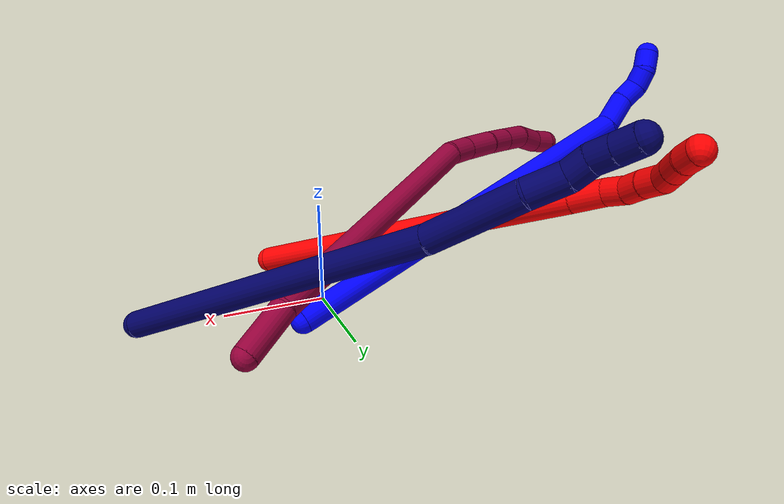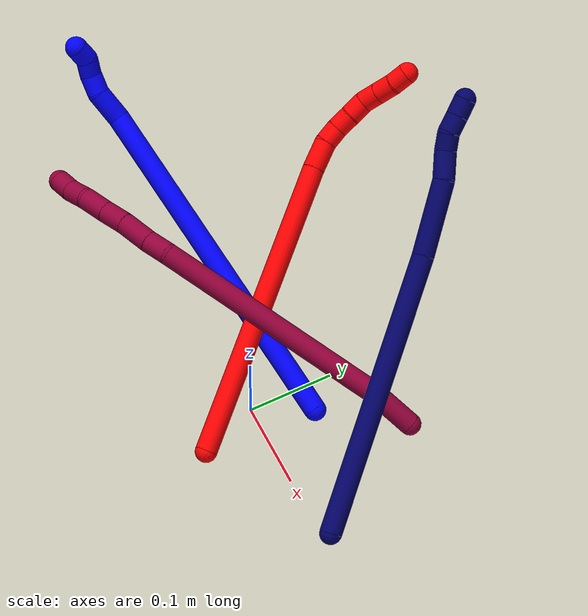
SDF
<sdf version="1.7">
 <world name="default">
  <model name="1">
   <static>0</static>
   <link name="1">
    <collision name="collision-cylinder-e_1_1_4">
     <pose>-0.049071 -0.015045 0.193484 0.077603 -0.247663 -0.009664</pose>
     <geometry><cylinder><radius>0.0125</radius><length>0.400352</length></cylinder></geometry>
     <surface>
      <friction><ode><mu>1.16</mu><mu2>1.16</mu2><slip1>0</slip1><slip2>0</slip2></ode></friction>
      <contact><ode><kp>1e+06</kp><kd>1</kd><max_vel>0</max_vel><min_depth>0.001</min_depth></ode></contact>
     </surface>
    </collision>
    <visual name="visual-cylinder-e_1_1_4">
     <pose>-0.049071 -0.015045 0.193484 0.077603 -0.247663 -0.009664</pose>
     <geometry><cylinder><radius>0.0125</radius><length>0.400352</length></cylinder></geometry>
     <material><ambient>0 0 1 1</ambient></material>
    </visual>
    <collision name="collision-cylinder-e_2_4_5">
     <pose>-0.10297 -0.024399 0.403611 -0.329486 -0.267899 0.044799</pose>
     <geometry><cylinder><radius>0.0125</radius><length>0.036479</length></cylinder></geometry>
     <surface>
      <friction><ode><mu>1.16</mu><mu2>1.16</mu2><slip1>0</slip1><slip2>0</slip2></ode></friction>
      <contact><ode><kp>1e+06</kp><kd>1</kd><max_vel>0</max_vel><min_depth>0.001</min_depth></ode></contact>
     </surface>
    </collision>
    <visual name="visual-cylinder-e_2_4_5">
     <pose>-0.10297 -0.024399 0.403611 -0.329486 -0.267899 0.044799</pose>
     <geometry><cylinder><radius>0.0125</radius><length>0.036479</length></cylinder></geometry>
     <material><ambient>0 0 1 1</ambient></material>
    </visual>
    <collision name="collision-cylinder-e_3_5_6">
     <pose>-0.113581 -0.017404 0.430177 -0.130683 -0.523993 0.03509</pose>
     <geometry><cylinder><radius>0.0125</radius><length>0.023117</length></cylinder></geometry>
     <surface>
      <friction><ode><mu>1.16</mu><mu2>1.16</mu2><slip1>0</slip1><slip2>0</slip2></ode></friction>
      <contact><ode><kp>1e+06</kp><kd>1</kd><max_vel>0</max_vel><min_depth>0.001</min_depth></ode></contact>
     </surface>
    </collision>
    <visual name="visual-cylinder-e_3_5_6">
     <pose>-0.113581 -0.017404 0.430177 -0.130683 -0.523993 0.03509</pose>
     <geometry><cylinder><radius>0.0125</radius><length>0.023117</length></cylinder></geometry>
     <material><ambient>0 0 1 1</ambient></material>
    </visual>
    <collision name="collision-cylinder-e_4_6_7">
     <pose>-0.126033 -0.011768 0.446179 -0.619015 -0.729051 0.242845</pose>
     <geometry><cylinder><radius>0.0125</radius><length>0.020021</length></cylinder></geometry>
     <surface>
      <friction><ode><mu>1.16</mu><mu2>1.16</mu2><slip1>0</slip1><slip2>0</slip2></ode></friction>
      <contact><ode><kp>1e+06</kp><kd>1</kd><max_vel>0</max_vel><min_depth>0.001</min_depth></ode></contact>
     </surface>
    </collision>
    <visual name="visual-cylinder-e_4_6_7">
     <pose>-0.126033 -0.011768 0.446179 -0.619015 -0.729051 0.242845</pose>
     <geometry><cylinder><radius>0.0125</radius><length>0.020021</length></cylinder></geometry>
     <material><ambient>0 0 1 1</ambient></material>
    </visual>
    <collision name="collision-cylinder-e_5_7_2">
     <pose>-0.135525 -0.001133 0.459513 -0.715461 -0.285782 0.107459</pose>
     <geometry><cylinder><radius>0.0125</radius><length>0.02003</length></cylinder></geometry>
     <surface>
      <friction><ode><mu>1.16</mu><mu2>1.16</mu2><slip1>0</slip1><slip2>0</slip2></ode></friction>
      <contact><ode><kp>1e+06</kp><kd>1</kd><max_vel>0</max_vel><min_depth>0.001</min_depth></ode></contact>
     </surface>
    </collision>
    <visual name="visual-cylinder-e_5_7_2">
     <pose>-0.135525 -0.001133 0.459513 -0.715461 -0.285782 0.107459</pose>
     <geometry><cylinder><radius>0.0125</radius><length>0.02003</length></cylinder></geometry>
     <material><ambient>0 0 1 1</ambient></material>
    </visual>
    <collision name="collision-sphere-2">
     <pose>-0.138348 0.00517 0.466766 0 -0 0</pose>
     <geometry><sphere><radius>0.0125</radius></sphere></geometry>
     <surface>
      <friction><ode><mu>1.16</mu><mu2>1.16</mu2><slip1>0</slip1><slip2>0</slip2></ode></friction>
      <contact><ode><kp>1e+06</kp><kd>1</kd><max_vel>0</max_vel><min_depth>0.001</min_depth></ode></contact>
     </surface>
    </collision>
    <visual name="visual-sphere-2">
     <pose>-0.138348 0.00517 0.466766 0 -0 0</pose>
     <geometry><sphere><radius>0.0125</radius></sphere></geometry>
     <material><ambient>0 0 1 1</ambient></material>
    </visual>
    <collision name="collision-sphere-7">
     <pose>-0.132702 -0.007436 0.45226 0 -0 0</pose>
     <geometry><sphere><radius>0.0125</radius></sphere></geometry>
     <surface>
      <friction><ode><mu>1.16</mu><mu2>1.16</mu2><slip1>0</slip1><slip2>0</slip2></ode></friction>
      <contact><ode><kp>1e+06</kp><kd>1</kd><max_vel>0</max_vel><min_depth>0.001</min_depth></ode></contact>
     </surface>
    </collision>
    <visual name="visual-sphere-7">
     <pose>-0.132702 -0.007436 0.45226 0 -0 0</pose>
     <geometry><sphere><radius>0.0125</radius></sphere></geometry>
     <material><ambient>0 0 1 1</ambient></material>
    </visual>
    <collision name="collision-sphere-6">
     <pose>-0.119364 -0.0161 0.440099 0 -0 0</pose>
     <geometry><sphere><radius>0.0125</radius></sphere></geometry>
     <surface>
      <friction><ode><mu>1.16</mu><mu2>1.16</mu2><slip1>0</slip1><slip2>0</slip2></ode></friction>
      <contact><ode><kp>1e+06</kp><kd>1</kd><max_vel>0</max_vel><min_depth>0.001</min_depth></ode></contact>
     </surface>
    </collision>
    <visual name="visual-sphere-6">
     <pose>-0.119364 -0.0161 0.440099 0 -0 0</pose>
     <geometry><sphere><radius>0.0125</radius></sphere></geometry>
     <material><ambient>0 0 1 1</ambient></material>
    </visual>
    <collision name="collision-sphere-5">
     <pose>-0.107798 -0.018708 0.420254 0 -0 0</pose>
     <geometry><sphere><radius>0.0125</radius></sphere></geometry>
     <surface>
      <friction><ode><mu>1.16</mu><mu2>1.16</mu2><slip1>0</slip1><slip2>0</slip2></ode></friction>
      <contact><ode><kp>1e+06</kp><kd>1</kd><max_vel>0</max_vel><min_depth>0.001</min_depth></ode></contact>
     </surface>
    </collision>
    <visual name="visual-sphere-5">
     <pose>-0.107798 -0.018708 0.420254 0 -0 0</pose>
     <geometry><sphere><radius>0.0125</radius></sphere></geometry>
     <material><ambient>0 0 1 1</ambient></material>
    </visual>
    <collision name="collision-sphere-1">
     <geometry><sphere><radius>0.0125</radius></sphere></geometry>
     <surface>
      <friction><ode><mu>1.16</mu><mu2>1.16</mu2><slip1>0</slip1><slip2>0</slip2></ode></friction>
      <contact><ode><kp>1e+06</kp><kd>1</kd><max_vel>0</max_vel><min_depth>0.001</min_depth></ode></contact>
     </surface>
    </collision>
    <visual name="visual-sphere-1">
     <geometry><sphere><radius>0.0125</radius></sphere></geometry>
     <material><ambient>0 0 1 1</ambient></material>
    </visual>
    <collision name="collision-sphere-4">
     <pose>-0.098142 -0.030091 0.386969 0 -0 0</pose>
     <geometry><sphere><radius>0.0125</radius></sphere></geometry>
     <surface>
      <friction><ode><mu>1.16</mu><mu2>1.16</mu2><slip1>0</slip1><slip2>0</slip2></ode></friction>
      <contact><ode><kp>1e+06</kp><kd>1</kd><max_vel>0</max_vel><min_depth>0.001</min_depth></ode></contact>
     </surface>
    </collision>
    <visual name="visual-sphere-4">
     <pose>-0.098142 -0.030091 0.386969 0 -0 0</pose>
     <geometry><sphere><radius>0.0125</radius></sphere></geometry>
     <material><ambient>0 0 1 1</ambient></material>
    </visual>
    <inertial>
     <pose>-0.062531 -0.015148 0.240534 0 -0 0</pose>
     <mass>0.5</mass>
     <inertia>
      <ixx>0.005148</ixx>
      <ixy>0</ixy>
      <ixz>0</ixz>
      <iyy>0.005308</iyy>
      <iyz>0</iyz>
      <izz>0.001755</izz>
     </inertia>
    </inertial>
   </link>
   <pose>0.037433 0.061786 0.011498 1.24947 0.696426 -1.35951</pose>
  </model>
  <model name="2">
   <static>0</static>
   <link name="2">
    <collision name="collision-cylinder-e_1_1_4">
     <pose>-0.009867 0.170317 0.007344 -1.5277 -0.057812 0.055374</pose>
     <geometry><cylinder><radius>0.0125</radius><length>0.341521</length></cylinder></geometry>
     <surface>
      <friction><ode><mu>1.16</mu><mu2>1.16</mu2><slip1>0</slip1><slip2>0</slip2></ode></friction>
      <contact><ode><kp>1e+06</kp><kd>1</kd><max_vel>0</max_vel><min_depth>0.001</min_depth></ode></contact>
     </surface>
    </collision>
    <visual name="visual-cylinder-e_1_1_4">
     <pose>-0.009867 0.170317 0.007344 -1.5277 -0.057812 0.055374</pose>
     <geometry><cylinder><radius>0.0125</radius><length>0.341521</length></cylinder></geometry>
     <material><ambient>1 0 0 1</ambient></material>
    </visual>
    <collision name="collision-cylinder-e_2_4_5">
     <pose>-0.019527 0.357098 0.014775 -1.56551 0.012541 -0.012475</pose>
     <geometry><cylinder><radius>0.0125</radius><length>0.032932</length></cylinder></geometry>
     <surface>
      <friction><ode><mu>1.16</mu><mu2>1.16</mu2><slip1>0</slip1><slip2>0</slip2></ode></friction>
      <contact><ode><kp>1e+06</kp><kd>1</kd><max_vel>0</max_vel><min_depth>0.001</min_depth></ode></contact>
     </surface>
    </collision>
    <visual name="visual-cylinder-e_2_4_5">
     <pose>-0.019527 0.357098 0.014775 -1.56551 0.012541 -0.012475</pose>
     <geometry><cylinder><radius>0.0125</radius><length>0.032932</length></cylinder></geometry>
     <material><ambient>1 0 0 1</ambient></material>
    </visual>
    <collision name="collision-cylinder-e_3_5_6">
     <pose>-0.017939 0.383748 0.01262 -1.78741 0.131684 -0.163685</pose>
     <geometry><cylinder><radius>0.0125</radius><length>0.021041</length></cylinder></geometry>
     <surface>
      <friction><ode><mu>1.16</mu><mu2>1.16</mu2><slip1>0</slip1><slip2>0</slip2></ode></friction>
      <contact><ode><kp>1e+06</kp><kd>1</kd><max_vel>0</max_vel><min_depth>0.001</min_depth></ode></contact>
     </surface>
    </collision>
    <visual name="visual-cylinder-e_3_5_6">
     <pose>-0.017939 0.383748 0.01262 -1.78741 0.131684 -0.163685</pose>
     <geometry><cylinder><radius>0.0125</radius><length>0.021041</length></cylinder></geometry>
     <material><ambient>1 0 0 1</ambient></material>
    </visual>
    <collision name="collision-cylinder-e_4_6_7">
     <pose>-0.012112 0.403196 0.008229 -1.79887 0.437374 -0.545526</pose>
     <geometry><cylinder><radius>0.0125</radius><length>0.020992</length></cylinder></geometry>
     <surface>
      <friction><ode><mu>1.16</mu><mu2>1.16</mu2><slip1>0</slip1><slip2>0</slip2></ode></friction>
      <contact><ode><kp>1e+06</kp><kd>1</kd><max_vel>0</max_vel><min_depth>0.001</min_depth></ode></contact>
     </surface>
    </collision>
    <visual name="visual-cylinder-e_4_6_7">
     <pose>-0.012112 0.403196 0.008229 -1.79887 0.437374 -0.545526</pose>
     <geometry><cylinder><radius>0.0125</radius><length>0.020992</length></cylinder></geometry>
     <material><ambient>1 0 0 1</ambient></material>
    </visual>
    <collision name="collision-cylinder-e_5_7_8">
     <pose>-0.004047 0.422247 0.003636 -1.8153 0.344355 -0.438092</pose>
     <geometry><cylinder><radius>0.0125</radius><length>0.021439</length></cylinder></geometry>
     <surface>
      <friction><ode><mu>1.16</mu><mu2>1.16</mu2><slip1>0</slip1><slip2>0</slip2></ode></friction>
      <contact><ode><kp>1e+06</kp><kd>1</kd><max_vel>0</max_vel><min_depth>0.001</min_depth></ode></contact>
     </surface>
    </collision>
    <visual name="visual-cylinder-e_5_7_8">
     <pose>-0.004047 0.422247 0.003636 -1.8153 0.344355 -0.438092</pose>
     <geometry><cylinder><radius>0.0125</radius><length>0.021439</length></cylinder></geometry>
     <material><ambient>1 0 0 1</ambient></material>
    </visual>
    <collision name="collision-cylinder-e_6_8_9">
     <pose>0.006892 0.438958 -0.001477 -1.93913 0.778731 -1.07815</pose>
     <geometry><cylinder><radius>0.0125</radius><length>0.020843</length></cylinder></geometry>
     <surface>
      <friction><ode><mu>1.16</mu><mu2>1.16</mu2><slip1>0</slip1><slip2>0</slip2></ode></friction>
      <contact><ode><kp>1e+06</kp><kd>1</kd><max_vel>0</max_vel><min_depth>0.001</min_depth></ode></contact>
     </surface>
    </collision>
    <visual name="visual-cylinder-e_6_8_9">
     <pose>0.006892 0.438958 -0.001477 -1.93913 0.778731 -1.07815</pose>
     <geometry><cylinder><radius>0.0125</radius><length>0.020843</length></cylinder></geometry>
     <material><ambient>1 0 0 1</ambient></material>
    </visual>
    <collision name="collision-cylinder-e_7_9_10">
     <pose>0.02167 0.452833 -0.006792 -1.9341 0.786649 -1.08331</pose>
     <geometry><cylinder><radius>0.0125</radius><length>0.02107</length></cylinder></geometry>
     <surface>
      <friction><ode><mu>1.16</mu><mu2>1.16</mu2><slip1>0</slip1><slip2>0</slip2></ode></friction>
      <contact><ode><kp>1e+06</kp><kd>1</kd><max_vel>0</max_vel><min_depth>0.001</min_depth></ode></contact>
     </surface>
    </collision>
    <visual name="visual-cylinder-e_7_9_10">
     <pose>0.02167 0.452833 -0.006792 -1.9341 0.786649 -1.08331</pose>
     <geometry><cylinder><radius>0.0125</radius><length>0.02107</length></cylinder></geometry>
     <material><ambient>1 0 0 1</ambient></material>
    </visual>
    <collision name="collision-cylinder-e_8_10_2">
     <pose>0.035132 0.467581 -0.011638 -1.84614 0.637944 -0.823106</pose>
     <geometry><cylinder><radius>0.0125</radius><length>0.020163</length></cylinder></geometry>
     <surface>
      <friction><ode><mu>1.16</mu><mu2>1.16</mu2><slip1>0</slip1><slip2>0</slip2></ode></friction>
      <contact><ode><kp>1e+06</kp><kd>1</kd><max_vel>0</max_vel><min_depth>0.001</min_depth></ode></contact>
     </surface>
    </collision>
    <visual name="visual-cylinder-e_8_10_2">
     <pose>0.035132 0.467581 -0.011638 -1.84614 0.637944 -0.823106</pose>
     <geometry><cylinder><radius>0.0125</radius><length>0.020163</length></cylinder></geometry>
     <material><ambient>1 0 0 1</ambient></material>
    </visual>
    <collision name="collision-sphere-2">
     <pose>0.041136 0.475374 -0.01384 0 -0 0</pose>
     <geometry><sphere><radius>0.0125</radius></sphere></geometry>
     <surface>
      <friction><ode><mu>1.16</mu><mu2>1.16</mu2><slip1>0</slip1><slip2>0</slip2></ode></friction>
      <contact><ode><kp>1e+06</kp><kd>1</kd><max_vel>0</max_vel><min_depth>0.001</min_depth></ode></contact>
     </surface>
    </collision>
    <visual name="visual-sphere-2">
     <pose>0.041136 0.475374 -0.01384 0 -0 0</pose>
     <geometry><sphere><radius>0.0125</radius></sphere></geometry>
     <material><ambient>1 0 0 1</ambient></material>
    </visual>
    <collision name="collision-sphere-10">
     <pose>0.029129 0.459787 -0.009436 0 -0 0</pose>
     <geometry><sphere><radius>0.0125</radius></sphere></geometry>
     <surface>
      <friction><ode><mu>1.16</mu><mu2>1.16</mu2><slip1>0</slip1><slip2>0</slip2></ode></friction>
      <contact><ode><kp>1e+06</kp><kd>1</kd><max_vel>0</max_vel><min_depth>0.001</min_depth></ode></contact>
     </surface>
    </collision>
    <visual name="visual-sphere-10">
     <pose>0.029129 0.459787 -0.009436 0 -0 0</pose>
     <geometry><sphere><radius>0.0125</radius></sphere></geometry>
     <material><ambient>1 0 0 1</ambient></material>
    </visual>
    <collision name="collision-sphere-9">
     <pose>0.014211 0.445879 -0.004148 0 -0 0</pose>
     <geometry><sphere><radius>0.0125</radius></sphere></geometry>
     <surface>
      <friction><ode><mu>1.16</mu><mu2>1.16</mu2><slip1>0</slip1><slip2>0</slip2></ode></friction>
      <contact><ode><kp>1e+06</kp><kd>1</kd><max_vel>0</max_vel><min_depth>0.001</min_depth></ode></contact>
     </surface>
    </collision>
    <visual name="visual-sphere-9">
     <pose>0.014211 0.445879 -0.004148 0 -0 0</pose>
     <geometry><sphere><radius>0.0125</radius></sphere></geometry>
     <material><ambient>1 0 0 1</ambient></material>
    </visual>
    <collision name="collision-sphere-4">
     <pose>-0.019733 0.340634 0.014688 0 -0 0</pose>
     <geometry><sphere><radius>0.0125</radius></sphere></geometry>
     <surface>
      <friction><ode><mu>1.16</mu><mu2>1.16</mu2><slip1>0</slip1><slip2>0</slip2></ode></friction>
      <contact><ode><kp>1e+06</kp><kd>1</kd><max_vel>0</max_vel><min_depth>0.001</min_depth></ode></contact>
     </surface>
    </collision>
    <visual name="visual-sphere-4">
     <pose>-0.019733 0.340634 0.014688 0 -0 0</pose>
     <geometry><sphere><radius>0.0125</radius></sphere></geometry>
     <material><ambient>1 0 0 1</ambient></material>
    </visual>
    <collision name="collision-sphere-1">
     <geometry><sphere><radius>0.0125</radius></sphere></geometry>
     <surface>
      <friction><ode><mu>1.16</mu><mu2>1.16</mu2><slip1>0</slip1><slip2>0</slip2></ode></friction>
      <contact><ode><kp>1e+06</kp><kd>1</kd><max_vel>0</max_vel><min_depth>0.001</min_depth></ode></contact>
     </surface>
    </collision>
    <visual name="visual-sphere-1">
     <geometry><sphere><radius>0.0125</radius></sphere></geometry>
     <material><ambient>1 0 0 1</ambient></material>
    </visual>
    <collision name="collision-sphere-8">
     <pose>-0.000428 0.432038 0.001194 0 -0 0</pose>
     <geometry><sphere><radius>0.0125</radius></sphere></geometry>
     <surface>
      <friction><ode><mu>1.16</mu><mu2>1.16</mu2><slip1>0</slip1><slip2>0</slip2></ode></friction>
      <contact><ode><kp>1e+06</kp><kd>1</kd><max_vel>0</max_vel><min_depth>0.001</min_depth></ode></contact>
     </surface>
    </collision>
    <visual name="visual-sphere-8">
     <pose>-0.000428 0.432038 0.001194 0 -0 0</pose>
     <geometry><sphere><radius>0.0125</radius></sphere></geometry>
     <material><ambient>1 0 0 1</ambient></material>
    </visual>
    <collision name="collision-sphere-5">
     <pose>-0.01932 0.373562 0.014862 0 -0 0</pose>
     <geometry><sphere><radius>0.0125</radius></sphere></geometry>
     <surface>
      <friction><ode><mu>1.16</mu><mu2>1.16</mu2><slip1>0</slip1><slip2>0</slip2></ode></friction>
      <contact><ode><kp>1e+06</kp><kd>1</kd><max_vel>0</max_vel><min_depth>0.001</min_depth></ode></contact>
     </surface>
    </collision>
    <visual name="visual-sphere-5">
     <pose>-0.01932 0.373562 0.014862 0 -0 0</pose>
     <geometry><sphere><radius>0.0125</radius></sphere></geometry>
     <material><ambient>1 0 0 1</ambient></material>
    </visual>
    <collision name="collision-sphere-6">
     <pose>-0.016557 0.393934 0.010379 0 -0 0</pose>
     <geometry><sphere><radius>0.0125</radius></sphere></geometry>
     <surface>
      <friction><ode><mu>1.16</mu><mu2>1.16</mu2><slip1>0</slip1><slip2>0</slip2></ode></friction>
      <contact><ode><kp>1e+06</kp><kd>1</kd><max_vel>0</max_vel><min_depth>0.001</min_depth></ode></contact>
     </surface>
    </collision>
    <visual name="visual-sphere-6">
     <pose>-0.016557 0.393934 0.010379 0 -0 0</pose>
     <geometry><sphere><radius>0.0125</radius></sphere></geometry>
     <material><ambient>1 0 0 1</ambient></material>
    </visual>
    <collision name="collision-sphere-7">
     <pose>-0.007666 0.412457 0.006079 0 -0 0</pose>
     <geometry><sphere><radius>0.0125</radius></sphere></geometry>
     <surface>
      <friction><ode><mu>1.16</mu><mu2>1.16</mu2><slip1>0</slip1><slip2>0</slip2></ode></friction>
      <contact><ode><kp>1e+06</kp><kd>1</kd><max_vel>0</max_vel><min_depth>0.001</min_depth></ode></contact>
     </surface>
    </collision>
    <visual name="visual-sphere-7">
     <pose>-0.007666 0.412457 0.006079 0 -0 0</pose>
     <geometry><sphere><radius>0.0125</radius></sphere></geometry>
     <material><ambient>1 0 0 1</ambient></material>
    </visual>
    <inertial>
     <pose>-0.006845 0.247271 0.006205 0 -0 0</pose>
     <mass>0.5</mass>
     <inertia>
      <ixx>0.003515</ixx>
      <ixy>0</ixy>
      <ixz>0</ixz>
      <iyy>0.000372</iyy>
      <iyz>0</iyz>
      <izz>-0.003149</izz>
     </inertia>
    </inertial>
   </link>
   <pose>0.034921 -0.071985 0.020597 0.552321 -0.82901 0.229746</pose>
  </model>
  <model name="7">
   <static>0</static>
   <link name="7">
    <collision name="collision-cylinder-e_1_1_4">
     <pose>-0.015185 0.01989 0.157905 -0.125304 -0.095125 0.005972</pose>
     <geometry><cylinder><radius>0.0125</radius><length>0.31975</length></cylinder></geometry>
     <surface>
      <friction><ode><mu>1.16</mu><mu2>1.16</mu2><slip1>0</slip1><slip2>0</slip2></ode></friction>
      <contact><ode><kp>1e+06</kp><kd>1</kd><max_vel>0</max_vel><min_depth>0.001</min_depth></ode></contact>
     </surface>
    </collision>
    <visual name="visual-cylinder-e_1_1_4">
     <pose>-0.015185 0.01989 0.157905 -0.125304 -0.095125 0.005972</pose>
     <geometry><cylinder><radius>0.0125</radius><length>0.31975</length></cylinder></geometry>
     <material><ambient>0.003922 0 0.403922 1</ambient></material>
    </visual>
    <collision name="collision-cylinder-e_2_4_5">
     <pose>-0.029006 0.045678 0.358598 -0.136965 0.031573 -0.002166</pose>
     <geometry><cylinder><radius>0.0125</radius><length>0.08643</length></cylinder></geometry>
     <surface>
      <friction><ode><mu>1.16</mu><mu2>1.16</mu2><slip1>0</slip1><slip2>0</slip2></ode></friction>
      <contact><ode><kp>1e+06</kp><kd>1</kd><max_vel>0</max_vel><min_depth>0.001</min_depth></ode></contact>
     </surface>
    </collision>
    <visual name="visual-cylinder-e_2_4_5">
     <pose>-0.029006 0.045678 0.358598 -0.136965 0.031573 -0.002166</pose>
     <geometry><cylinder><radius>0.0125</radius><length>0.08643</length></cylinder></geometry>
     <material><ambient>0.003922 0 0.403922 1</ambient></material>
    </visual>
    <collision name="collision-cylinder-e_3_5_6">
     <pose>-0.026894 0.05004 0.417695 0.093894 0.045611 0.002143</pose>
     <geometry><cylinder><radius>0.0125</radius><length>0.032795</length></cylinder></geometry>
     <surface>
      <friction><ode><mu>1.16</mu><mu2>1.16</mu2><slip1>0</slip1><slip2>0</slip2></ode></friction>
      <contact><ode><kp>1e+06</kp><kd>1</kd><max_vel>0</max_vel><min_depth>0.001</min_depth></ode></contact>
     </surface>
    </collision>
    <visual name="visual-cylinder-e_3_5_6">
     <pose>-0.026894 0.05004 0.417695 0.093894 0.045611 0.002143</pose>
     <geometry><cylinder><radius>0.0125</radius><length>0.032795</length></cylinder></geometry>
     <material><ambient>0.003922 0 0.403922 1</ambient></material>
    </visual>
    <collision name="collision-cylinder-e_4_6_7">
     <pose>-0.023764 0.049975 0.44376 -0.149581 0.236975 -0.01784</pose>
     <geometry><cylinder><radius>0.0125</radius><length>0.020302</length></cylinder></geometry>
     <surface>
      <friction><ode><mu>1.16</mu><mu2>1.16</mu2><slip1>0</slip1><slip2>0</slip2></ode></friction>
      <contact><ode><kp>1e+06</kp><kd>1</kd><max_vel>0</max_vel><min_depth>0.001</min_depth></ode></contact>
     </surface>
    </collision>
    <visual name="visual-cylinder-e_4_6_7">
     <pose>-0.023764 0.049975 0.44376 -0.149581 0.236975 -0.01784</pose>
     <geometry><cylinder><radius>0.0125</radius><length>0.020302</length></cylinder></geometry>
     <material><ambient>0.003922 0 0.403922 1</ambient></material>
    </visual>
    <collision name="collision-cylinder-e_5_7_8">
     <pose>-0.022079 0.054516 0.463113 -0.309712 -0.069229 0.010811</pose>
     <geometry><cylinder><radius>0.0125</radius><length>0.020198</length></cylinder></geometry>
     <surface>
      <friction><ode><mu>1.16</mu><mu2>1.16</mu2><slip1>0</slip1><slip2>0</slip2></ode></friction>
      <contact><ode><kp>1e+06</kp><kd>1</kd><max_vel>0</max_vel><min_depth>0.001</min_depth></ode></contact>
     </surface>
    </collision>
    <visual name="visual-cylinder-e_5_7_8">
     <pose>-0.022079 0.054516 0.463113 -0.309712 -0.069229 0.010811</pose>
     <geometry><cylinder><radius>0.0125</radius><length>0.020198</length></cylinder></geometry>
     <material><ambient>0.003922 0 0.403922 1</ambient></material>
    </visual>
    <collision name="collision-cylinder-e_6_8_2">
     <pose>-0.023204 0.060639 0.482497 -0.302291 -0.041509 0.006323</pose>
     <geometry><cylinder><radius>0.0125</radius><length>0.020525</length></cylinder></geometry>
     <surface>
      <friction><ode><mu>1.16</mu><mu2>1.16</mu2><slip1>0</slip1><slip2>0</slip2></ode></friction>
      <contact><ode><kp>1e+06</kp><kd>1</kd><max_vel>0</max_vel><min_depth>0.001</min_depth></ode></contact>
     </surface>
    </collision>
    <visual name="visual-cylinder-e_6_8_2">
     <pose>-0.023204 0.060639 0.482497 -0.302291 -0.041509 0.006323</pose>
     <geometry><cylinder><radius>0.0125</radius><length>0.020525</length></cylinder></geometry>
     <material><ambient>0.003922 0 0.403922 1</ambient></material>
    </visual>
    <collision name="collision-sphere-2">
     <pose>-0.023629 0.063692 0.492286 0 -0 0</pose>
     <geometry><sphere><radius>0.0125</radius></sphere></geometry>
     <surface>
      <friction><ode><mu>1.16</mu><mu2>1.16</mu2><slip1>0</slip1><slip2>0</slip2></ode></friction>
      <contact><ode><kp>1e+06</kp><kd>1</kd><max_vel>0</max_vel><min_depth>0.001</min_depth></ode></contact>
     </surface>
    </collision>
    <visual name="visual-sphere-2">
     <pose>-0.023629 0.063692 0.492286 0 -0 0</pose>
     <geometry><sphere><radius>0.0125</radius></sphere></geometry>
     <material><ambient>0.003922 0 0.403922 1</ambient></material>
    </visual>
    <collision name="collision-sphere-4">
     <pose>-0.03037 0.039781 0.315809 0 -0 0</pose>
     <geometry><sphere><radius>0.0125</radius></sphere></geometry>
     <surface>
      <friction><ode><mu>1.16</mu><mu2>1.16</mu2><slip1>0</slip1><slip2>0</slip2></ode></friction>
      <contact><ode><kp>1e+06</kp><kd>1</kd><max_vel>0</max_vel><min_depth>0.001</min_depth></ode></contact>
     </surface>
    </collision>
    <visual name="visual-sphere-4">
     <pose>-0.03037 0.039781 0.315809 0 -0 0</pose>
     <geometry><sphere><radius>0.0125</radius></sphere></geometry>
     <material><ambient>0.003922 0 0.403922 1</ambient></material>
    </visual>
    <collision name="collision-sphere-1">
     <geometry><sphere><radius>0.0125</radius></sphere></geometry>
     <surface>
      <friction><ode><mu>1.16</mu><mu2>1.16</mu2><slip1>0</slip1><slip2>0</slip2></ode></friction>
      <contact><ode><kp>1e+06</kp><kd>1</kd><max_vel>0</max_vel><min_depth>0.001</min_depth></ode></contact>
     </surface>
    </collision>
    <visual name="visual-sphere-1">
     <geometry><sphere><radius>0.0125</radius></sphere></geometry>
     <material><ambient>0.003922 0 0.403922 1</ambient></material>
    </visual>
    <collision name="collision-sphere-8">
     <pose>-0.022778 0.057587 0.472709 0 -0 0</pose>
     <geometry><sphere><radius>0.0125</radius></sphere></geometry>
     <surface>
      <friction><ode><mu>1.16</mu><mu2>1.16</mu2><slip1>0</slip1><slip2>0</slip2></ode></friction>
      <contact><ode><kp>1e+06</kp><kd>1</kd><max_vel>0</max_vel><min_depth>0.001</min_depth></ode></contact>
     </surface>
    </collision>
    <visual name="visual-sphere-8">
     <pose>-0.022778 0.057587 0.472709 0 -0 0</pose>
     <geometry><sphere><radius>0.0125</radius></sphere></geometry>
     <material><ambient>0.003922 0 0.403922 1</ambient></material>
    </visual>
    <collision name="collision-sphere-5">
     <pose>-0.027642 0.051576 0.401387 0 -0 0</pose>
     <geometry><sphere><radius>0.0125</radius></sphere></geometry>
     <surface>
      <friction><ode><mu>1.16</mu><mu2>1.16</mu2><slip1>0</slip1><slip2>0</slip2></ode></friction>
      <contact><ode><kp>1e+06</kp><kd>1</kd><max_vel>0</max_vel><min_depth>0.001</min_depth></ode></contact>
     </surface>
    </collision>
    <visual name="visual-sphere-5">
     <pose>-0.027642 0.051576 0.401387 0 -0 0</pose>
     <geometry><sphere><radius>0.0125</radius></sphere></geometry>
     <material><ambient>0.003922 0 0.403922 1</ambient></material>
    </visual>
    <collision name="collision-sphere-6">
     <pose>-0.026147 0.048504 0.434003 0 -0 0</pose>
     <geometry><sphere><radius>0.0125</radius></sphere></geometry>
     <surface>
      <friction><ode><mu>1.16</mu><mu2>1.16</mu2><slip1>0</slip1><slip2>0</slip2></ode></friction>
      <contact><ode><kp>1e+06</kp><kd>1</kd><max_vel>0</max_vel><min_depth>0.001</min_depth></ode></contact>
     </surface>
    </collision>
    <visual name="visual-sphere-6">
     <pose>-0.026147 0.048504 0.434003 0 -0 0</pose>
     <geometry><sphere><radius>0.0125</radius></sphere></geometry>
     <material><ambient>0.003922 0 0.403922 1</ambient></material>
    </visual>
    <collision name="collision-sphere-7">
     <pose>-0.021381 0.051445 0.453518 0 -0 0</pose>
     <geometry><sphere><radius>0.0125</radius></sphere></geometry>
     <surface>
      <friction><ode><mu>1.16</mu><mu2>1.16</mu2><slip1>0</slip1><slip2>0</slip2></ode></friction>
      <contact><ode><kp>1e+06</kp><kd>1</kd><max_vel>0</max_vel><min_depth>0.001</min_depth></ode></contact>
     </surface>
    </collision>
    <visual name="visual-sphere-7">
     <pose>-0.021381 0.051445 0.453518 0 -0 0</pose>
     <geometry><sphere><radius>0.0125</radius></sphere></geometry>
     <material><ambient>0.003922 0 0.403922 1</ambient></material>
    </visual>
    <inertial>
     <pose>-0.019298 0.030619 0.246897 0 -0 0</pose>
     <mass>0.5</mass>
     <inertia>
      <ixx>0.002804</ixx>
      <ixy>0</ixy>
      <ixz>0</ixz>
      <iyy>0.002802</iyy>
      <iyz>0</iyz>
      <izz>-5.3e-05</izz>
     </inertia>
    </inertial>
   </link>
   <pose>0.181235 0.007712 0.011499 0.754346 -0.918991 -1.51741</pose>
  </model>
  <model name="8">
   <static>0</static>
   <link name="8">
    <collision name="collision-cylinder-e_1_1_4">
     <pose>-0.017765 -0.020005 0.003265 1.40899 -0.719646 -0.618994</pose>
     <geometry><cylinder><radius>0.0125</radius><length>0.053906</length></cylinder></geometry>
     <surface>
      <friction><ode><mu>1.16</mu><mu2>1.16</mu2><slip1>0</slip1><slip2>0</slip2></ode></friction>
      <contact><ode><kp>1e+06</kp><kd>1</kd><max_vel>0</max_vel><min_depth>0.001</min_depth></ode></contact>
     </surface>
    </collision>
    <visual name="visual-cylinder-e_1_1_4">
     <pose>-0.017765 -0.020005 0.003265 1.40899 -0.719646 -0.618994</pose>
     <geometry><cylinder><radius>0.0125</radius><length>0.053906</length></cylinder></geometry>
     <material><ambient>0.584314 0 0.227451 1</ambient></material>
    </visual>
    <collision name="collision-cylinder-e_2_4_5">
     <pose>-0.107564 -0.149668 0.047721 1.21148 -0.551332 -0.386926</pose>
     <geometry><cylinder><radius>0.0125</radius><length>0.27503</length></cylinder></geometry>
     <surface>
      <friction><ode><mu>1.16</mu><mu2>1.16</mu2><slip1>0</slip1><slip2>0</slip2></ode></friction>
      <contact><ode><kp>1e+06</kp><kd>1</kd><max_vel>0</max_vel><min_depth>0.001</min_depth></ode></contact>
     </surface>
    </collision>
    <visual name="visual-cylinder-e_2_4_5">
     <pose>-0.107564 -0.149668 0.047721 1.21148 -0.551332 -0.386926</pose>
     <geometry><cylinder><radius>0.0125</radius><length>0.27503</length></cylinder></geometry>
     <material><ambient>0.584314 0 0.227451 1</ambient></material>
    </visual>
    <collision name="collision-cylinder-e_3_5_6">
     <pose>-0.182986 -0.271291 0.094347 1.14432 -0.252368 -0.163036</pose>
     <geometry><cylinder><radius>0.0125</radius><length>0.027142</length></cylinder></geometry>
     <surface>
      <friction><ode><mu>1.16</mu><mu2>1.16</mu2><slip1>0</slip1><slip2>0</slip2></ode></friction>
      <contact><ode><kp>1e+06</kp><kd>1</kd><max_vel>0</max_vel><min_depth>0.001</min_depth></ode></contact>
     </surface>
    </collision>
    <visual name="visual-cylinder-e_3_5_6">
     <pose>-0.182986 -0.271291 0.094347 1.14432 -0.252368 -0.163036</pose>
     <geometry><cylinder><radius>0.0125</radius><length>0.027142</length></cylinder></geometry>
     <material><ambient>0.584314 0 0.227451 1</ambient></material>
    </visual>
    <collision name="collision-cylinder-e_4_6_7">
     <pose>-0.190209 -0.300129 0.10598 1.21883 -0.210156 -0.146976</pose>
     <geometry><cylinder><radius>0.0125</radius><length>0.036761</length></cylinder></geometry>
     <surface>
      <friction><ode><mu>1.16</mu><mu2>1.16</mu2><slip1>0</slip1><slip2>0</slip2></ode></friction>
      <contact><ode><kp>1e+06</kp><kd>1</kd><max_vel>0</max_vel><min_depth>0.001</min_depth></ode></contact>
     </surface>
    </collision>
    <visual name="visual-cylinder-e_4_6_7">
     <pose>-0.190209 -0.300129 0.10598 1.21883 -0.210156 -0.146976</pose>
     <geometry><cylinder><radius>0.0125</radius><length>0.036761</length></cylinder></geometry>
     <material><ambient>0.584314 0 0.227451 1</ambient></material>
    </visual>
    <collision name="collision-cylinder-e_5_7_8">
     <pose>-0.19674 -0.329302 0.118107 1.12153 -0.19499 -0.122692</pose>
     <geometry><cylinder><radius>0.0125</radius><length>0.027836</length></cylinder></geometry>
     <surface>
      <friction><ode><mu>1.16</mu><mu2>1.16</mu2><slip1>0</slip1><slip2>0</slip2></ode></friction>
      <contact><ode><kp>1e+06</kp><kd>1</kd><max_vel>0</max_vel><min_depth>0.001</min_depth></ode></contact>
     </surface>
    </collision>
    <visual name="visual-cylinder-e_5_7_8">
     <pose>-0.19674 -0.329302 0.118107 1.12153 -0.19499 -0.122692</pose>
     <geometry><cylinder><radius>0.0125</radius><length>0.027836</length></cylinder></geometry>
     <material><ambient>0.584314 0 0.227451 1</ambient></material>
    </visual>
    <collision name="collision-cylinder-e_6_8_9">
     <pose>-0.202172 -0.355328 0.130153 1.15165 -0.180065 -0.117083</pose>
     <geometry><cylinder><radius>0.0125</radius><length>0.030549</length></cylinder></geometry>
     <surface>
      <friction><ode><mu>1.16</mu><mu2>1.16</mu2><slip1>0</slip1><slip2>0</slip2></ode></friction>
      <contact><ode><kp>1e+06</kp><kd>1</kd><max_vel>0</max_vel><min_depth>0.001</min_depth></ode></contact>
     </surface>
    </collision>
    <visual name="visual-cylinder-e_6_8_9">
     <pose>-0.202172 -0.355328 0.130153 1.15165 -0.180065 -0.117083</pose>
     <geometry><cylinder><radius>0.0125</radius><length>0.030549</length></cylinder></geometry>
     <material><ambient>0.584314 0 0.227451 1</ambient></material>
    </visual>
    <collision name="collision-cylinder-e_7_9_10">
     <pose>-0.203425 -0.38036 0.142776 1.04855 0.113212 0.065512</pose>
     <geometry><cylinder><radius>0.0125</radius><length>0.026256</length></cylinder></geometry>
     <surface>
      <friction><ode><mu>1.16</mu><mu2>1.16</mu2><slip1>0</slip1><slip2>0</slip2></ode></friction>
      <contact><ode><kp>1e+06</kp><kd>1</kd><max_vel>0</max_vel><min_depth>0.001</min_depth></ode></contact>
     </surface>
    </collision>
    <visual name="visual-cylinder-e_7_9_10">
     <pose>-0.203425 -0.38036 0.142776 1.04855 0.113212 0.065512</pose>
     <geometry><cylinder><radius>0.0125</radius><length>0.026256</length></cylinder></geometry>
     <material><ambient>0.584314 0 0.227451 1</ambient></material>
    </visual>
    <collision name="collision-cylinder-e_8_10_2">
     <pose>-0.20168 -0.402226 0.153181 1.21718 0.023227 0.016185</pose>
     <geometry><cylinder><radius>0.0125</radius><length>0.02252</length></cylinder></geometry>
     <surface>
      <friction><ode><mu>1.16</mu><mu2>1.16</mu2><slip1>0</slip1><slip2>0</slip2></ode></friction>
      <contact><ode><kp>1e+06</kp><kd>1</kd><max_vel>0</max_vel><min_depth>0.001</min_depth></ode></contact>
     </surface>
    </collision>
    <visual name="visual-cylinder-e_8_10_2">
     <pose>-0.20168 -0.402226 0.153181 1.21718 0.023227 0.016185</pose>
     <geometry><cylinder><radius>0.0125</radius><length>0.02252</length></cylinder></geometry>
     <material><ambient>0.584314 0 0.227451 1</ambient></material>
    </visual>
    <collision name="collision-sphere-2">
     <pose>-0.201419 -0.412786 0.157079 0 -0 0</pose>
     <geometry><sphere><radius>0.0125</radius></sphere></geometry>
     <surface>
      <friction><ode><mu>1.16</mu><mu2>1.16</mu2><slip1>0</slip1><slip2>0</slip2></ode></friction>
      <contact><ode><kp>1e+06</kp><kd>1</kd><max_vel>0</max_vel><min_depth>0.001</min_depth></ode></contact>
     </surface>
    </collision>
    <visual name="visual-sphere-2">
     <pose>-0.201419 -0.412786 0.157079 0 -0 0</pose>
     <geometry><sphere><radius>0.0125</radius></sphere></geometry>
     <material><ambient>0.584314 0 0.227451 1</ambient></material>
    </visual>
    <collision name="collision-sphere-10">
     <pose>-0.201942 -0.391665 0.149283 0 -0 0</pose>
     <geometry><sphere><radius>0.0125</radius></sphere></geometry>
     <surface>
      <friction><ode><mu>1.16</mu><mu2>1.16</mu2><slip1>0</slip1><slip2>0</slip2></ode></friction>
      <contact><ode><kp>1e+06</kp><kd>1</kd><max_vel>0</max_vel><min_depth>0.001</min_depth></ode></contact>
     </surface>
    </collision>
    <visual name="visual-sphere-10">
     <pose>-0.201942 -0.391665 0.149283 0 -0 0</pose>
     <geometry><sphere><radius>0.0125</radius></sphere></geometry>
     <material><ambient>0.584314 0 0.227451 1</ambient></material>
    </visual>
    <collision name="collision-sphere-9">
     <pose>-0.204908 -0.369054 0.136269 0 -0 0</pose>
     <geometry><sphere><radius>0.0125</radius></sphere></geometry>
     <surface>
      <friction><ode><mu>1.16</mu><mu2>1.16</mu2><slip1>0</slip1><slip2>0</slip2></ode></friction>
      <contact><ode><kp>1e+06</kp><kd>1</kd><max_vel>0</max_vel><min_depth>0.001</min_depth></ode></contact>
     </surface>
    </collision>
    <visual name="visual-sphere-9">
     <pose>-0.204908 -0.369054 0.136269 0 -0 0</pose>
     <geometry><sphere><radius>0.0125</radius></sphere></geometry>
     <material><ambient>0.584314 0 0.227451 1</ambient></material>
    </visual>
    <collision name="collision-sphere-4">
     <pose>-0.035531 -0.04001 0.006531 0 -0 0</pose>
     <geometry><sphere><radius>0.0125</radius></sphere></geometry>
     <surface>
      <friction><ode><mu>1.16</mu><mu2>1.16</mu2><slip1>0</slip1><slip2>0</slip2></ode></friction>
      <contact><ode><kp>1e+06</kp><kd>1</kd><max_vel>0</max_vel><min_depth>0.001</min_depth></ode></contact>
     </surface>
    </collision>
    <visual name="visual-sphere-4">
     <pose>-0.035531 -0.04001 0.006531 0 -0 0</pose>
     <geometry><sphere><radius>0.0125</radius></sphere></geometry>
     <material><ambient>0.584314 0 0.227451 1</ambient></material>
    </visual>
    <collision name="collision-sphere-1">
     <geometry><sphere><radius>0.0125</radius></sphere></geometry>
     <surface>
      <friction><ode><mu>1.16</mu><mu2>1.16</mu2><slip1>0</slip1><slip2>0</slip2></ode></friction>
      <contact><ode><kp>1e+06</kp><kd>1</kd><max_vel>0</max_vel><min_depth>0.001</min_depth></ode></contact>
     </surface>
    </collision>
    <visual name="visual-sphere-1">
     <geometry><sphere><radius>0.0125</radius></sphere></geometry>
     <material><ambient>0.584314 0 0.227451 1</ambient></material>
    </visual>
    <collision name="collision-sphere-8">
     <pose>-0.199437 -0.341601 0.124037 0 -0 0</pose>
     <geometry><sphere><radius>0.0125</radius></sphere></geometry>
     <surface>
      <friction><ode><mu>1.16</mu><mu2>1.16</mu2><slip1>0</slip1><slip2>0</slip2></ode></friction>
      <contact><ode><kp>1e+06</kp><kd>1</kd><max_vel>0</max_vel><min_depth>0.001</min_depth></ode></contact>
     </surface>
    </collision>
    <visual name="visual-sphere-8">
     <pose>-0.199437 -0.341601 0.124037 0 -0 0</pose>
     <geometry><sphere><radius>0.0125</radius></sphere></geometry>
     <material><ambient>0.584314 0 0.227451 1</ambient></material>
    </visual>
    <collision name="collision-sphere-5">
     <pose>-0.179597 -0.259327 0.088911 0 -0 0</pose>
     <geometry><sphere><radius>0.0125</radius></sphere></geometry>
     <surface>
      <friction><ode><mu>1.16</mu><mu2>1.16</mu2><slip1>0</slip1><slip2>0</slip2></ode></friction>
      <contact><ode><kp>1e+06</kp><kd>1</kd><max_vel>0</max_vel><min_depth>0.001</min_depth></ode></contact>
     </surface>
    </collision>
    <visual name="visual-sphere-5">
     <pose>-0.179597 -0.259327 0.088911 0 -0 0</pose>
     <geometry><sphere><radius>0.0125</radius></sphere></geometry>
     <material><ambient>0.584314 0 0.227451 1</ambient></material>
    </visual>
    <collision name="collision-sphere-6">
     <pose>-0.186375 -0.283255 0.099783 0 -0 0</pose>
     <geometry><sphere><radius>0.0125</radius></sphere></geometry>
     <surface>
      <friction><ode><mu>1.16</mu><mu2>1.16</mu2><slip1>0</slip1><slip2>0</slip2></ode></friction>
      <contact><ode><kp>1e+06</kp><kd>1</kd><max_vel>0</max_vel><min_depth>0.001</min_depth></ode></contact>
     </surface>
    </collision>
    <visual name="visual-sphere-6">
     <pose>-0.186375 -0.283255 0.099783 0 -0 0</pose>
     <geometry><sphere><radius>0.0125</radius></sphere></geometry>
     <material><ambient>0.584314 0 0.227451 1</ambient></material>
    </visual>
    <collision name="collision-sphere-7">
     <pose>-0.194043 -0.317003 0.112177 0 -0 0</pose>
     <geometry><sphere><radius>0.0125</radius></sphere></geometry>
     <surface>
      <friction><ode><mu>1.16</mu><mu2>1.16</mu2><slip1>0</slip1><slip2>0</slip2></ode></friction>
      <contact><ode><kp>1e+06</kp><kd>1</kd><max_vel>0</max_vel><min_depth>0.001</min_depth></ode></contact>
     </surface>
    </collision>
    <visual name="visual-sphere-7">
     <pose>-0.194043 -0.317003 0.112177 0 -0 0</pose>
     <geometry><sphere><radius>0.0125</radius></sphere></geometry>
     <material><ambient>0.584314 0 0.227451 1</ambient></material>
    </visual>
    <inertial>
     <pose>-0.128071 -0.199409 0.068439 0 -0 0</pose>
     <mass>0.5</mass>
     <inertia>
      <ixx>0.000819</ixx>
      <ixy>0</ixy>
      <ixz>0</ixz>
      <iyy>0.000305</iyy>
      <iyz>0</iyz>
      <izz>0.002358</izz>
     </inertia>
    </inertial>
   </link>
   <pose>0.109721 0.142542 0.031426 -3.13313 0.955754 1.54701</pose>
  </model>
 </world>
</sdf>
